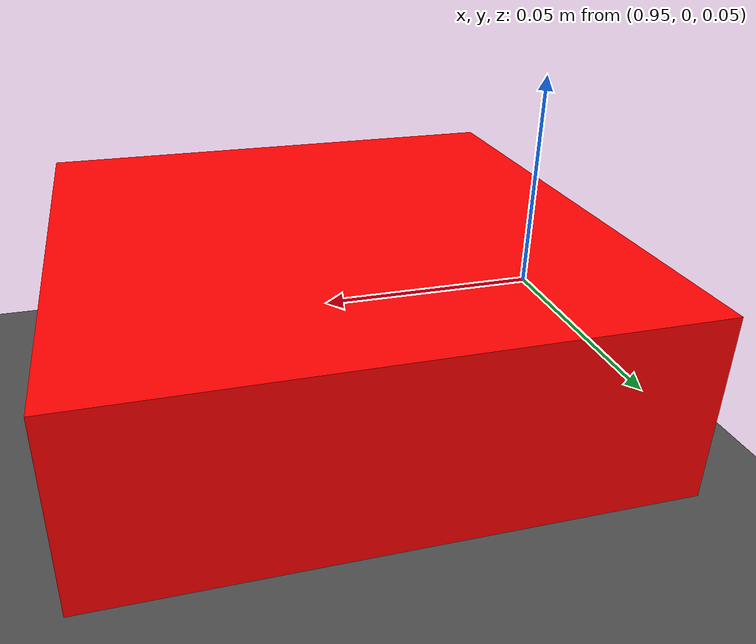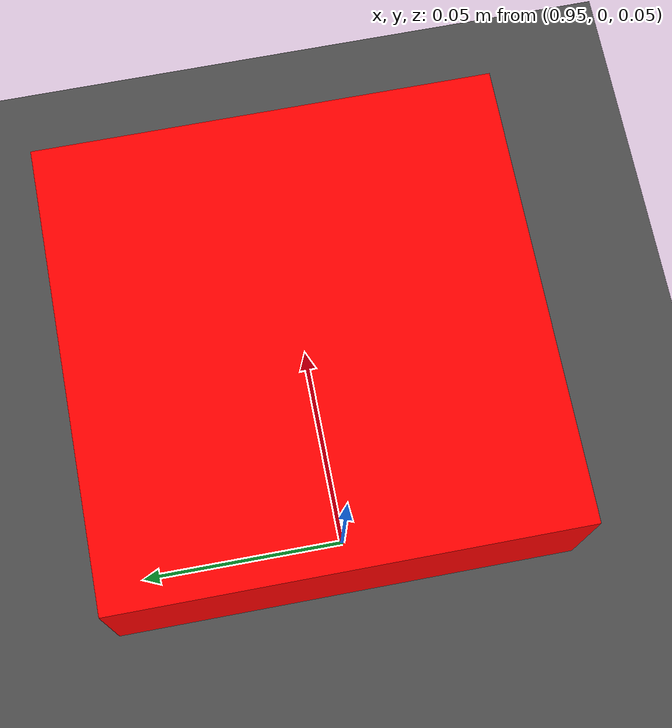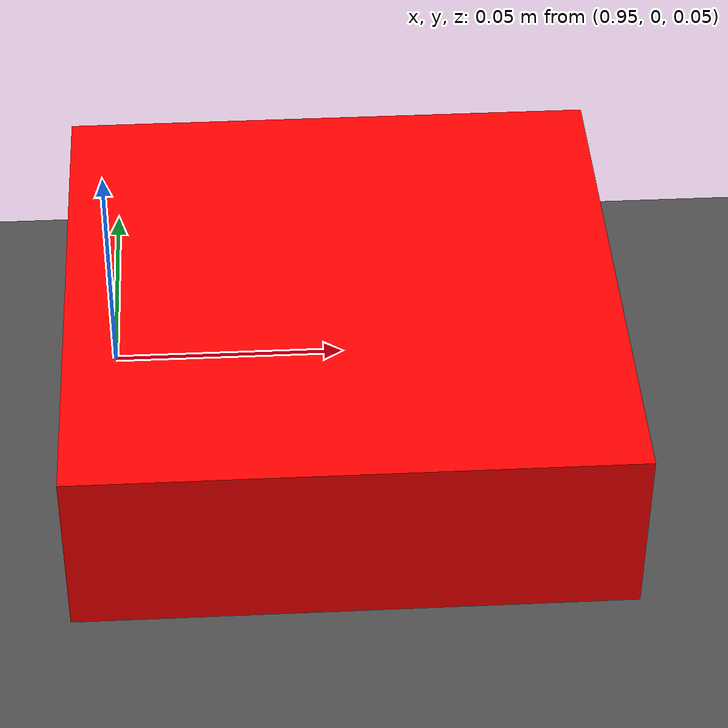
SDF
<?xml version="1.0" ?>
<sdf version="1.7">
  <world name="default">

    <!-- Simple ground plane -->
    <model name="groun_plane">
      <static>true</static>
      <link name="link">
        <collision name="collision">
          <geometry>
            <plane>
              <normal>0 0 1</normal>
              <size>100 100</size>
            </plane>
          </geometry>
          <surface>
            <contact/>
            <bounce/>
            <friction>
              <ode/>
            </friction>
          </surface>
        </collision>
        <visual name="visual">
          <geometry>
            <plane>
              <normal>0 0 1</normal>
              <size>100 100</size>
            </plane>
          </geometry>
          <material>
            <ambient>0.3 0.3 0.3 1</ambient>
            <diffuse>0.3 0.3 0.3 1</diffuse>
            <specular>0.01 0.01 0.01 1</specular>
          </material>
        </visual>
      </link>
    </model>

      <!-- Movable button (robot can push it) -->
  <model name="button">
    <pose>1 0 0.05 0 0 0</pose>    <!-- x y z roll pitch yaw -->
    <static>false</static>

    <link name="button_link">
      <pose>0 0 0 0 0 0</pose>

      <inertial>
        <mass>0.1</mass>
        <inertia>
          <ixx>0.0001</ixx> <ixy>0</ixy> <ixz>0</ixz>
          <iyy>0.0001</iyy> <iyz>0</iyz>
          <izz>0.0001</izz>
        </inertia>
      </inertial>

      <collision name="collision">
        <geometry>
          <box><size>0.12 0.12 0.04</size></box>
        </geometry>
      </collision>

      <visual name="visual">
        <geometry>
          <box><size>0.12 0.12 0.04</size></box>
        </geometry>
        <material>
          <ambient>1 0 0 1</ambient>
          <diffuse>1 0 0 1</diffuse>
        </material>
      </visual>
    </link>
  </model>

    <!-- Sun light -->
    <light type="directional" name="sun">
      <cast_shadows>true</cast_shadows>
      <pose>0 0 10 0 -0 0</pose>
      <diffuse>1 1 1 1</diffuse>
      <specular>0.1 0.1 0.1 1</specular>
      <attenuation>
        <range>1000</range>
        <constant>0.9</constant>
        <linear>0.01</linear>
        <quadratic>0.001</quadratic>
      </attenuation>
      <direction>-0.5 0.5 -1</direction>
    </light>

  </world>
</sdf>
